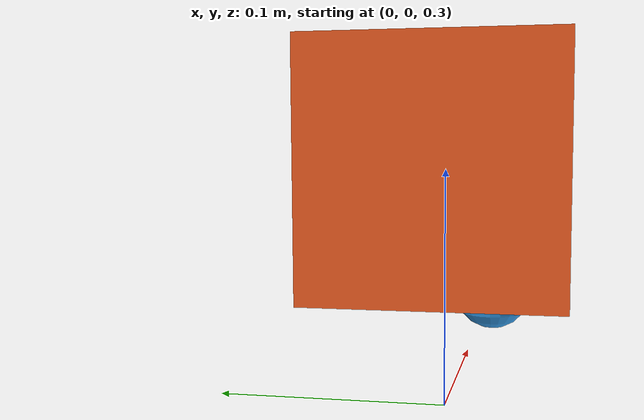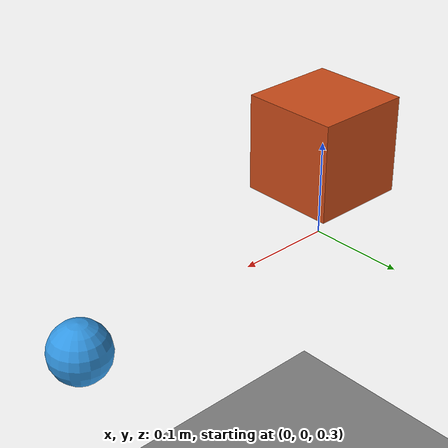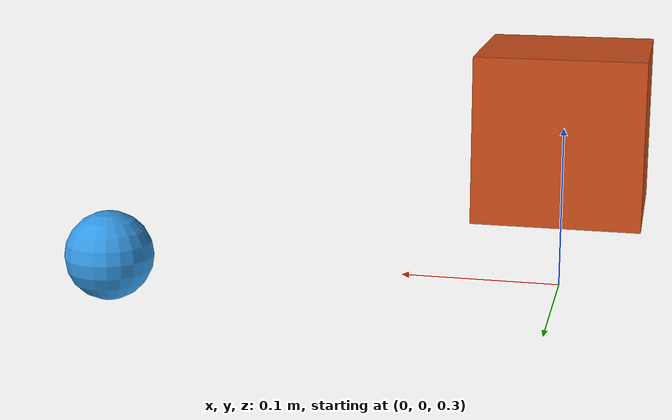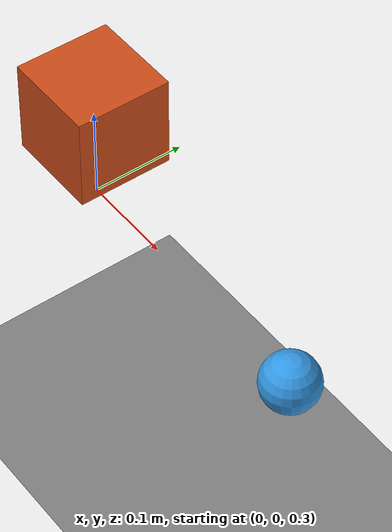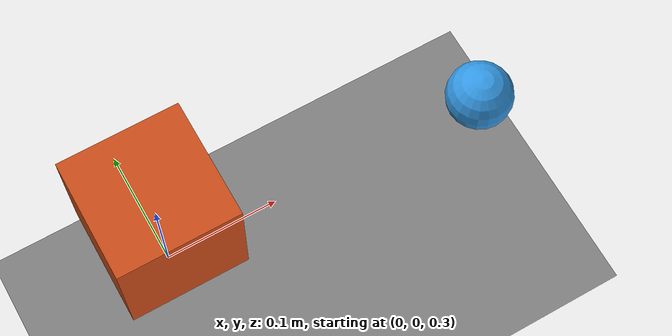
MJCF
<mujoco model="pose_randomizer_demo">

  <worldbody>
    <!-- A cube that is randomly placed within ±5 cm in XY and ±30° in yaw -->
    <body name="object" pos="0 0 0.4">
      <freejoint/>
      <geom type="box" size="0.05 0.05 0.05" rgba="0.8 0.3 0.1 1"/>

      <plugin plugin="MujocoRosUtils::PoseRandomizer">
        <config key="x_range"     value="-0.05 0.05"/>
        <config key="y_range"     value="-0.05 0.05"/>
        <config key="z_range"     value="0.0   0.0"/>
        <config key="roll_range"  value="0.0   0.0"/>
        <config key="pitch_range" value="0.0   0.0"/>
        <config key="yaw_range"   value="-0.5236 0.5236"/>
      </plugin>
    </body>

    <!-- A second object: only Z height varies -->
    <body name="part2" pos="0.3 0 0.3">
      <freejoint/>
      <geom type="sphere" size="0.03" rgba="0.2 0.6 0.9 1"/>

      <plugin plugin="MujocoRosUtils::PoseRandomizer">
        <config key="z_range" value="-0.02 0.02"/>
      </plugin>
    </body>

    <geom name="floor" type="plane" size="2 2 0.1" rgba="0.5 0.5 0.5 1"/>
  </worldbody>

  <!--
    Load the shared library so MuJoCo can find the plugin.
    Adjust the path to match your installation.
  -->
  <extension>
    <plugin plugin="MujocoRosUtils::PoseRandomizer"/>
  </extension>
</mujoco>
